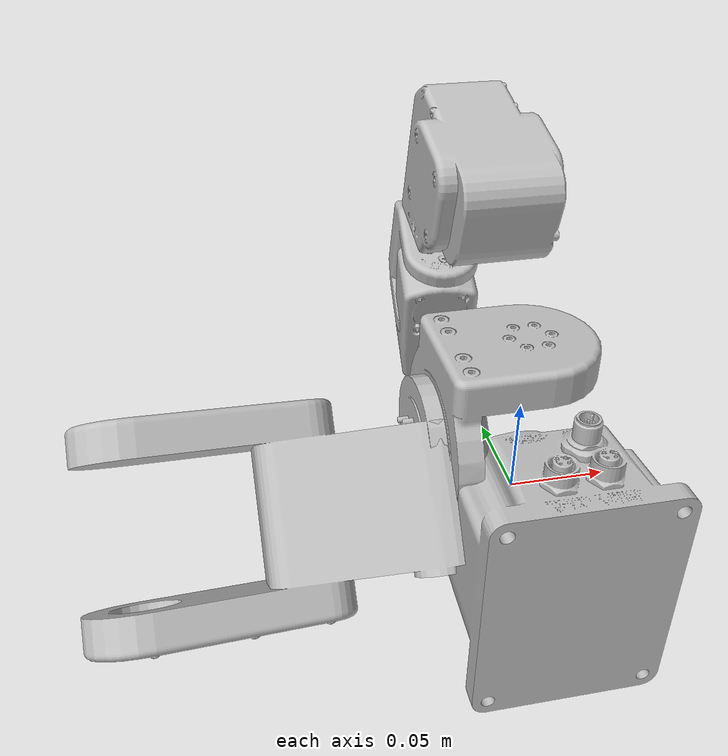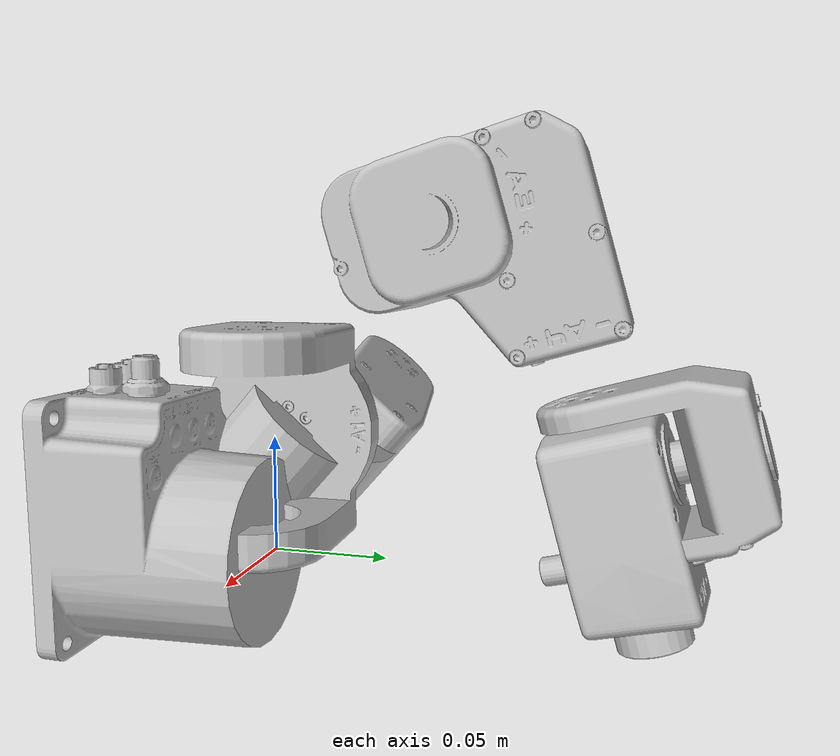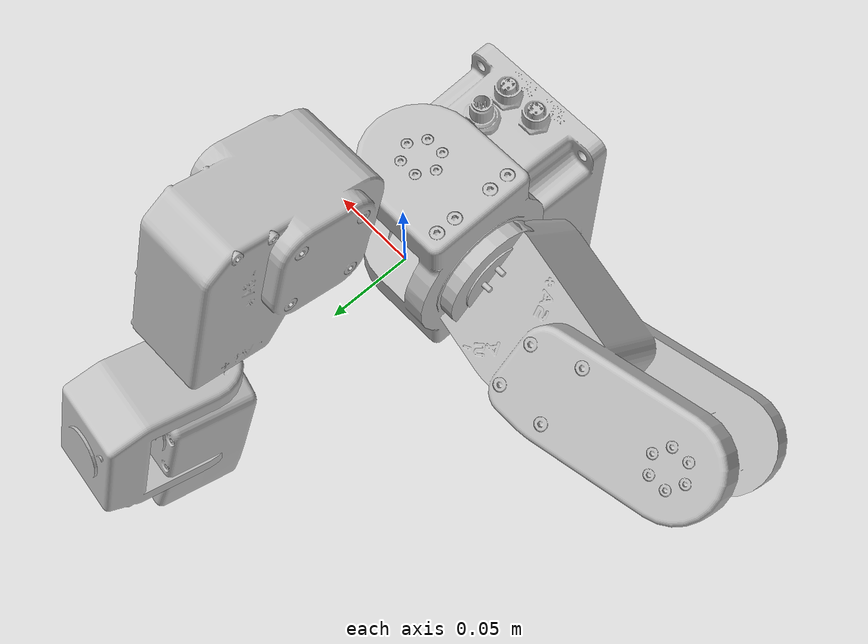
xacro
<?xml version="1.0"?>
<robot xmlns:xacro="http://www.ros.org/wiki/xacro" name="meca500">

    <!-- use_mock_hardware:=true  → mock_components/GenericSystem (default, no real robot needed) -->
    <!-- use_mock_hardware:=false → meca500_hardware/Meca500System (real robot at robot_ip)     -->
    <xacro:arg name="use_mock_hardware" default="true"/>
    <xacro:arg name="robot_ip"          default="192.168.0.100"/>
    <xacro:arg name="control_port"      default="10000"/>
    <xacro:arg name="monitoring_port"   default="10001"/>
    <xacro:arg name="use_extruder"      default="true"/>

    <xacro:include filename="$(find mecha500_robot)/urdf/robot.urdf.xacro" />

</robot>

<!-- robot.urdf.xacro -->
<!-- Generated using onshape-to-robot -->
<!-- Onshape https://cad.onshape.com/documents/3f7808e3432022d5b08177ae/w/13f89a95a237b65f6f12ec68/e/351cb02b91d61e28501e44e7 -->
<robot name="meca500" xmlns:xacro="http://www.ros.org/wiki/xacro">

  <xacro:arg name="use_mock_hardware" default="true"/>

  <xacro:include filename="$(find mecha500_robot)/urdf/robot.ros2_control.xacro" />

  <xacro:meca500_ros2_control name="meca500" prefix="" use_mock_hardware="$(arg use_mock_hardware)"/>

  <!-- Link link_0__base -->
  <link name="link_0__base">
    <inertial>
      <origin xyz="-0.003588 -0.0202515 -0.0487122" rpy="0 0 0"/>
      <mass value="1.90904"/>
      <inertia ixx="0.00285533" ixy="3.86058e-06" ixz="1.52473e-07" iyy="0.00224755" iyz="-0.000252565" izz="0.00266554"/>
    </inertial>
    <!-- Part link_0__base -->
    <visual>
      <origin xyz="-0.0191622 -0.00975546 -0.00283954" rpy="1.5708 -0 -3.14159"/>
      <geometry>
        <mesh filename="package://mecha500_robot/meshes/link_0__base.stl"/>
      </geometry>
      <material name="link_0__base_material">
        <color rgba="0.74902 0.74902 0.74902 1"/>
      </material>
    </visual>
    <collision>
      <origin xyz="-0.0191622 -0.00975546 -0.00283954" rpy="1.5708 -0 -3.14159"/>
      <geometry>
        <mesh filename="package://mecha500_robot/meshes/link_0__base.stl"/>
      </geometry>
    </collision>
  </link>
  <!-- Link link_1 -->
  <link name="link_1">
    <inertial>
      <origin xyz="0.00334976 -5.73436e-05 -0.0215866" rpy="0 0 0"/>
      <mass value="0.497831"/>
      <inertia ixx="0.000473161" ixy="4.22411e-06" ixz="-1.09578e-05" iyy="0.000832194" iyz="-3.07932e-07" izz="0.000761939"/>
    </inertial>
    <!-- Part link_1 -->
    <visual>
      <origin xyz="0 0 -0.045" rpy="3.14159 0 1.56059"/>
      <geometry>
        <mesh filename="package://mecha500_robot/meshes/link_1.stl"/>
      </geometry>
      <material name="link_1_material">
        <color rgba="0.74902 0.74902 0.74902 1"/>
      </material>
    </visual>
    <collision>
      <origin xyz="0 0 -0.045" rpy="3.14159 0 1.56059"/>
      <geometry>
        <mesh filename="package://mecha500_robot/meshes/link_1.stl"/>
      </geometry>
    </collision>
  </link>
  <!-- Link link_2 -->
  <link name="link_2">
    <inertial>
      <origin xyz="0.0234559 0.0324928 -0.0323826" rpy="0 0 0"/>
      <mass value="1.74151"/>
      <inertia ixx="0.00391112" ixy="-0.00160445" ixz="4.42327e-05" iyy="0.00327463" iyz="5.2002e-05" izz="0.00432559"/>
    </inertial>
    <!-- Part link_2 -->
    <visual>
      <origin xyz="-0.00530816 -0.00968086 -0.032" rpy="-3.14159 0 0.856039"/>
      <geometry>
        <mesh filename="package://mecha500_robot/meshes/link_2.stl"/>
      </geometry>
      <material name="link_2_material">
        <color rgba="0.74902 0.74902 0.74902 1"/>
      </material>
    </visual>
    <collision>
      <origin xyz="-0.00530816 -0.00968086 -0.032" rpy="-3.14159 0 0.856039"/>
      <geometry>
        <mesh filename="package://mecha500_robot/meshes/link_2.stl"/>
      </geometry>
    </collision>
  </link>
  <!-- Link link_3 -->
  <link name="link_3">
    <inertial>
      <origin xyz="0.00637687 -0.0143165 -0.0310276" rpy="0 0 0"/>
      <mass value="1.00601"/>
      <inertia ixx="0.000985393" ixy="0.000189374" ixz="9.40101e-06" iyy="0.0007538" iyz="-1.11226e-05" izz="0.00122325"/>
    </inertial>
    <!-- Part link_3 -->
    <visual>
      <origin xyz="-0.155395 0.0992203 -0.0470431" rpy="2.13905 1.5708 0"/>
      <geometry>
        <mesh filename="package://mecha500_robot/meshes/link_3.stl"/>
      </geometry>
      <material name="link_3_material">
        <color rgba="0.74902 0.74902 0.74902 1"/>
      </material>
    </visual>
    <collision>
      <origin xyz="-0.155395 0.0992203 -0.0470431" rpy="2.13905 1.5708 0"/>
      <geometry>
        <mesh filename="package://mecha500_robot/meshes/link_3.stl"/>
      </geometry>
    </collision>
  </link>
  <!-- Link link_4 -->
  <link name="link_4">
    <inertial>
      <origin xyz="7.16922e-06 -0.000731017 -0.0296473" rpy="0 0 0"/>
      <mass value="0.319243"/>
      <inertia ixx="0.000307803" ixy="-1.8448e-08" ixz="-6.729e-09" iyy="0.000187145" iyz="-3.44011e-06" izz="0.00021562"/>
    </inertial>
    <!-- Part link_4 -->
    <visual>
      <origin xyz="4.4e-06 0 -0.059" rpy="3.14159 -0 0"/>
      <geometry>
        <mesh filename="package://mecha500_robot/meshes/link_4.stl"/>
      </geometry>
      <material name="link_4_material">
        <color rgba="0.74902 0.74902 0.74902 1"/>
      </material>
    </visual>
    <collision>
      <origin xyz="4.4e-06 0 -0.059" rpy="3.14159 -0 0"/>
      <geometry>
        <mesh filename="package://mecha500_robot/meshes/link_4.stl"/>
      </geometry>
    </collision>
  </link>
  <!-- Link link_5 -->
  <link name="link_5">
    <inertial>
      <origin xyz="2.54851e-06 -0.020511 -0.023743" rpy="0 0 0"/>
      <mass value="0.447067"/>
      <inertia ixx="0.000325043" ixy="-2.2551e-08" ixz="8.77e-09" iyy="0.000149997" iyz="-9.46566e-06" izz="0.000314979"/>
    </inertial>
    <!-- Part link_5 -->
    <visual>
      <origin xyz="-0.222375 0.12 -0.0397931" rpy="1.5708 1.5708 0"/>
      <geometry>
        <mesh filename="package://mecha500_robot/meshes/link_5.stl"/>
      </geometry>
      <material name="link_5_material">
        <color rgba="0.74902 0.74902 0.74902 1"/>
      </material>
    </visual>
    <collision>
      <origin xyz="-0.222375 0.12 -0.0397931" rpy="1.5708 1.5708 0"/>
      <geometry>
        <mesh filename="package://mecha500_robot/meshes/link_5.stl"/>
      </geometry>
    </collision>
  </link>
  <!-- Link link_6__flange -->
  <link name="link_6__flange">
    <inertial>
      <origin xyz="-5.182e-09 -3.0509e-06 -0.00515374" rpy="0 0 0"/>
      <mass value="0.00865395"/>
      <inertia ixx="3.06713e-07" ixy="0" ixz="-0" iyy="2.99295e-07" iyz="-1.22e-10" izz="4.44177e-07"/>
    </inertial>
    <!-- Part link_6__flange -->
    <visual>
      <origin xyz="-0.0763536 -0.0515492 0.158594" rpy="3.14159 0 0"/>
      <geometry>
        <mesh filename="package://mecha500_robot/meshes/link_6__flange.stl"/>
      </geometry>
      <material name="link_6__flange_material">
        <color rgba="0.74902 0.74902 0.74902 1"/>
      </material>
    </visual>
    <collision>
      <origin xyz="-0.0763536 -0.0515492 0.158594" rpy="3.14159 0 0"/>
      <geometry>
        <mesh filename="package://mecha500_robot/meshes/link_6__flange.stl"/>
      </geometry>
    </collision>
  </link>
  <!-- Joint from link_5 to link_6__flange -->
  <joint name="joint6" type="revolute">
    <origin xyz="2.2e-06 -0.059 -0.02425" rpy="1.5708 0.00776461 3.14159"/>
    <parent link="link_5"/>
    <child link="link_6__flange"/>
    <axis xyz="0 0 1"/>
    <limit effort="1.5" velocity="8.7266" lower="-628.318" upper="628.318"/>
    <joint_properties friction="0.0"/>
  </joint>
  <!-- Joint from link_4 to link_5 -->
  <joint name="joint5" type="revolute">
    <origin xyz="4.4e-06 -0.0245 -0.059" rpy="1.5708 0.0574563 -0"/>
    <parent link="link_4"/>
    <child link="link_5"/>
    <axis xyz="0 0 1"/>
    <limit effort="2.5" velocity="6.1087" lower="-2.0071" upper="2.0071"/>
    <joint_properties friction="0.0"/>
  </joint>
  <!-- Joint from link_3 to link_4 -->
  <joint name="joint4" type="revolute">
    <origin xyz="0.00296752 -0.0659636 -0.0315" rpy="-1.5708 1.44617 -0.56825"/>
    <parent link="link_3"/>
    <child link="link_4"/>
    <axis xyz="0 0 1"/>
    <limit effort="2.5" velocity="6.1087" lower="-2.9671" upper="2.9671"/>
    <joint_properties friction="0.0"/>
  </joint>
  <!-- Joint from link_2 to link_3 -->
  <joint name="joint3" type="revolute">
    <origin xyz="0.0831754 0.0922782 -0" rpy="0 0 0.856039"/>
    <parent link="link_2"/>
    <child link="link_3"/>
    <axis xyz="0 0 1"/>
    <limit effort="16.6" velocity="3.927" lower="-2.3562" upper="1.2217"/>
    <joint_properties friction="0.0"/>
  </joint>
  <!-- Joint from link_1 to link_2 -->
  <joint name="joint2" type="revolute">
    <origin xyz="-0.0324983 0.000331735 -0.045" rpy="-1.5708 0 1.56059"/>
    <parent link="link_1"/>
    <child link="link_2"/>
    <axis xyz="0 0 1"/>
    <limit effort="16.6" velocity="3.927" lower="-1.2217" upper="1.5708"/>
    <joint_properties friction="0.0"/>
  </joint>
  <!-- Joint from link_0__base to link_1 -->
  <joint name="joint1" type="revolute">
    <origin xyz="-0.00361915 -0.00975546 0.00153062" rpy="-3.14159 -0 -3.14159"/>
    <parent link="link_0__base"/>
    <child link="link_1"/>
    <axis xyz="0 0 1"/>
    <limit effort="16.6" velocity="3.927" lower="-3.0543" upper="3.0543"/>
    <joint_properties friction="0.0"/>
  </joint>
</robot>
